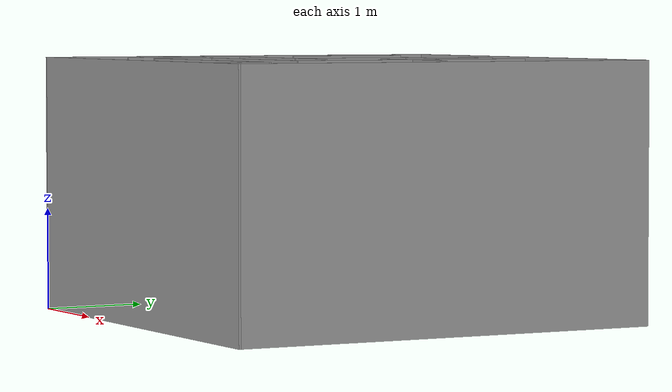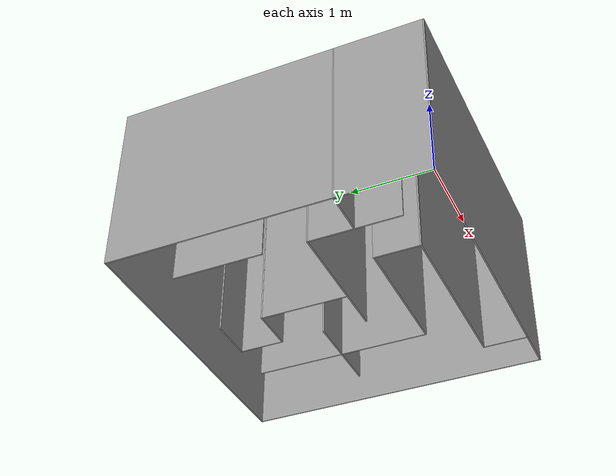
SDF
<?xml version='1.0'?>
<sdf version='1.6'>
  <model name='eced3901_final'>
    <pose frame=''>2.133 2.1335 0 0 -0 0</pose>
    <link name='Wall_10'>
      <collision name='Wall_10_Collision'>
        <geometry>
          <box>
            <size>0.629 0.02 2.5</size>
          </box>
        </geometry>
        <pose frame=''>0 0 1.25 0 -0 0</pose>
      </collision>
      <visual name='Wall_10_Visual'>
        <pose frame=''>0 0 1.25 0 -0 0</pose>
        <geometry>
          <box>
            <size>0.629 0.02 2.5</size>
          </box>
        </geometry>
        <material>
          <script>
            <uri>file://media/materials/scripts/gazebo.material</uri>
            <name>Gazebo/Grey</name>
          </script>
          <ambient>1 1 1 1</ambient>
        </material>
        <meta>
          <layer>0</layer>
        </meta>
      </visual>
      <pose frame=''>1.523 -1.829 0 0 -0 1.5708</pose>
    </link>
    <link name='Wall_12'>
      <collision name='Wall_12_Collision'>
        <geometry>
          <box>
            <size>2.457 0.02 2.5</size>
          </box>
        </geometry>
        <pose frame=''>0 0 1.25 0 -0 0</pose>
      </collision>
      <visual name='Wall_12_Visual'>
        <pose frame=''>0 0 1.25 0 -0 0</pose>
        <geometry>
          <box>
            <size>2.457 0.02 2.5</size>
          </box>
        </geometry>
        <material>
          <script>
            <uri>file://media/materials/scripts/gazebo.material</uri>
            <name>Gazebo/Grey</name>
          </script>
          <ambient>1 1 1 1</ambient>
        </material>
        <meta>
          <layer>0</layer>
        </meta>
      </visual>
      <pose frame=''>0.3045 -1.5245 0 0 -0 3.14159</pose>
    </link>
    <link name='Wall_14'>
      <collision name='Wall_14_Collision'>
        <geometry>
          <box>
            <size>0.63 0.02 2.5</size>
          </box>
        </geometry>
        <pose frame=''>0 0 1.25 0 -0 0</pose>
      </collision>
      <visual name='Wall_14_Visual'>
        <pose frame=''>0 0 1.25 0 -0 0</pose>
        <geometry>
          <box>
            <size>0.63 0.02 2.5</size>
          </box>
        </geometry>
        <material>
          <script>
            <uri>file://media/materials/scripts/gazebo.material</uri>
            <name>Gazebo/Grey</name>
          </script>
          <ambient>1 1 1 1</ambient>
        </material>
        <meta>
          <layer>0</layer>
        </meta>
      </visual>
      <pose frame=''>-0.914 -1.2195 0 0 -0 1.5708</pose>
    </link>
    <link name='Wall_16'>
      <collision name='Wall_16_Collision'>
        <geometry>
          <box>
            <size>1.847 0.02 2.5</size>
          </box>
        </geometry>
        <pose frame=''>0 0 1.25 0 -0 0</pose>
      </collision>
      <visual name='Wall_16_Visual'>
        <pose frame=''>0 0 1.25 0 -0 0</pose>
        <geometry>
          <box>
            <size>1.847 0.02 2.5</size>
          </box>
        </geometry>
        <material>
          <script>
            <uri>file://media/materials/scripts/gazebo.material</uri>
            <name>Gazebo/Grey</name>
          </script>
          <ambient>1 1 1 1</ambient>
        </material>
        <meta>
          <layer>0</layer>
        </meta>
      </visual>
      <pose frame=''>-0.0005 -0.9145 0 0 -0 0</pose>
    </link>
    <link name='Wall_18'>
      <collision name='Wall_18_Collision'>
        <geometry>
          <box>
            <size>1.239 0.02 2.5</size>
          </box>
        </geometry>
        <pose frame=''>0 0 1.25 0 -0 0</pose>
      </collision>
      <visual name='Wall_18_Visual'>
        <pose frame=''>0 0 1.25 0 -0 0</pose>
        <geometry>
          <box>
            <size>1.239 0.02 2.5</size>
          </box>
        </geometry>
        <material>
          <script>
            <uri>file://media/materials/scripts/gazebo.material</uri>
            <name>Gazebo/Grey</name>
          </script>
          <ambient>1 1 1 1</ambient>
        </material>
        <meta>
          <layer>0</layer>
        </meta>
      </visual>
      <pose frame=''>0.913 -0.305 0 0 -0 1.5708</pose>
    </link>
    <link name='Wall_2'>
      <collision name='Wall_2_Collision'>
        <geometry>
          <box>
            <size>4.287 0.02 2.5</size>
          </box>
        </geometry>
        <pose frame=''>0 0 1.25 0 -0 0</pose>
      </collision>
      <visual name='Wall_2_Visual'>
        <pose frame=''>0 0 1.25 0 -0 0</pose>
        <geometry>
          <box>
            <size>4.287 0.02 2.5</size>
          </box>
        </geometry>
        <material>
          <script>
            <uri>file://media/materials/scripts/gazebo.material</uri>
            <name>Gazebo/Grey</name>
          </script>
          <ambient>1 1 1 1</ambient>
        </material>
        <meta>
          <layer>0</layer>
        </meta>
      </visual>
      <pose frame=''>-2.133 0 0 0 -0 1.5708</pose>
    </link>
    <link name='Wall_20'>
      <collision name='Wall_20_Collision'>
        <geometry>
          <box>
            <size>1.239 0.02 2.5</size>
          </box>
        </geometry>
        <pose frame=''>0 0 1.25 0 -0 0</pose>
      </collision>
      <visual name='Wall_20_Visual'>
        <pose frame=''>0 0 1.25 0 -0 0</pose>
        <geometry>
          <box>
            <size>1.239 0.02 2.5</size>
          </box>
        </geometry>
        <material>
          <script>
            <uri>file://media/materials/scripts/gazebo.material</uri>
            <name>Gazebo/Grey</name>
          </script>
          <ambient>1 1 1 1</ambient>
        </material>
        <meta>
          <layer>0</layer>
        </meta>
      </visual>
      <pose frame=''>0.9135 0.3035 0 0 -0 3.14159</pose>
    </link>
    <link name='Wall_23'>
      <collision name='Wall_23_Collision'>
        <geometry>
          <box>
            <size>1.239 0.02 2.5</size>
          </box>
        </geometry>
        <pose frame=''>0 0 1.25 0 -0 0</pose>
      </collision>
      <visual name='Wall_23_Visual'>
        <pose frame=''>0 0 1.25 0 -0 0</pose>
        <geometry>
          <box>
            <size>1.239 0.02 2.5</size>
          </box>
        </geometry>
        <material>
          <script>
            <uri>file://media/materials/scripts/gazebo.material</uri>
            <name>Gazebo/Grey</name>
          </script>
          <ambient>1 1 1 1</ambient>
        </material>
        <meta>
          <layer>0</layer>
        </meta>
      </visual>
      <pose frame=''>0.913 0.914 0 0 -0 1.5708</pose>
    </link>
    <link name='Wall_25'>
      <collision name='Wall_25_Collision'>
        <geometry>
          <box>
            <size>0.63 0.02 2.5</size>
          </box>
        </geometry>
        <pose frame=''>0 0 1.25 0 -0 0</pose>
      </collision>
      <visual name='Wall_25_Visual'>
        <pose frame=''>0 0 1.25 0 -0 0</pose>
        <geometry>
          <box>
            <size>0.63 0.02 2.5</size>
          </box>
        </geometry>
        <material>
          <script>
            <uri>file://media/materials/scripts/gazebo.material</uri>
            <name>Gazebo/Grey</name>
          </script>
          <ambient>1 1 1 1</ambient>
        </material>
        <meta>
          <layer>0</layer>
        </meta>
      </visual>
      <pose frame=''>-0.001 1.5235 0 0 -0 3.14159</pose>
    </link>
    <link name='Wall_27'>
      <collision name='Wall_27_Collision'>
        <geometry>
          <box>
            <size>0.63 0.02 2.5</size>
          </box>
        </geometry>
        <pose frame=''>0 0 1.25 0 -0 0</pose>
      </collision>
      <visual name='Wall_27_Visual'>
        <pose frame=''>0 0 1.25 0 -0 0</pose>
        <geometry>
          <box>
            <size>0.63 0.02 2.5</size>
          </box>
        </geometry>
        <material>
          <script>
            <uri>file://media/materials/scripts/gazebo.material</uri>
            <name>Gazebo/Grey</name>
          </script>
          <ambient>1 1 1 1</ambient>
        </material>
        <meta>
          <layer>0</layer>
        </meta>
      </visual>
      <pose frame=''>0.304 1.2185 0 0 -0 -1.5708</pose>
    </link>
    <link name='Wall_29'>
      <collision name='Wall_29_Collision'>
        <geometry>
          <box>
            <size>0.63 0.02 2.5</size>
          </box>
        </geometry>
        <pose frame=''>0 0 1.25 0 -0 0</pose>
      </collision>
      <visual name='Wall_29_Visual'>
        <pose frame=''>0 0 1.25 0 -0 0</pose>
        <geometry>
          <box>
            <size>0.63 0.02 2.5</size>
          </box>
        </geometry>
        <material>
          <script>
            <uri>file://media/materials/scripts/gazebo.material</uri>
            <name>Gazebo/Grey</name>
          </script>
          <ambient>1 1 1 1</ambient>
        </material>
        <meta>
          <layer>0</layer>
        </meta>
      </visual>
      <pose frame=''>-0.001 0.9135 0 0 -0 3.14159</pose>
    </link>
    <link name='Wall_31'>
      <collision name='Wall_31_Collision'>
        <geometry>
          <box>
            <size>1.239 0.02 2.5</size>
          </box>
        </geometry>
        <pose frame=''>0 0 1.25 0 -0 0</pose>
      </collision>
      <visual name='Wall_31_Visual'>
        <pose frame=''>0 0 1.25 0 -0 0</pose>
        <geometry>
          <box>
            <size>1.239 0.02 2.5</size>
          </box>
        </geometry>
        <material>
          <script>
            <uri>file://media/materials/scripts/gazebo.material</uri>
            <name>Gazebo/Grey</name>
          </script>
          <ambient>1 1 1 1</ambient>
        </material>
        <meta>
          <layer>0</layer>
        </meta>
      </visual>
      <pose frame=''>-0.305 0.304 0 0 -0 -1.5708</pose>
    </link>
    <link name='Wall_33'>
      <collision name='Wall_33_Collision'>
        <geometry>
          <box>
            <size>1.848 0.02 2.5</size>
          </box>
        </geometry>
        <pose frame=''>0 0 1.25 0 -0 0</pose>
      </collision>
      <visual name='Wall_33_Visual'>
        <pose frame=''>0 0 1.25 0 -0 0</pose>
        <geometry>
          <box>
            <size>1.848 0.02 2.5</size>
          </box>
        </geometry>
        <material>
          <script>
            <uri>file://media/materials/scripts/gazebo.material</uri>
            <name>Gazebo/Grey</name>
          </script>
          <ambient>1 1 1 1</ambient>
        </material>
        <meta>
          <layer>0</layer>
        </meta>
      </visual>
      <pose frame=''>-0.61 -0.3055 0 0 -0 3.14159</pose>
    </link>
    <link name='Wall_35'>
      <collision name='Wall_35_Collision'>
        <geometry>
          <box>
            <size>1.239 0.02 2.5</size>
          </box>
        </geometry>
        <pose frame=''>0 0 1.25 0 -0 0</pose>
      </collision>
      <visual name='Wall_35_Visual'>
        <pose frame=''>0 0 1.25 0 -0 0</pose>
        <geometry>
          <box>
            <size>1.239 0.02 2.5</size>
          </box>
        </geometry>
        <material>
          <script>
            <uri>file://media/materials/scripts/gazebo.material</uri>
            <name>Gazebo/Grey</name>
          </script>
          <ambient>1 1 1 1</ambient>
        </material>
        <meta>
          <layer>0</layer>
        </meta>
      </visual>
      <pose frame=''>-1.524 -0.915 0 0 -0 -1.5708</pose>
    </link>
    <link name='Wall_37'>
      <collision name='Wall_37_Collision'>
        <geometry>
          <box>
            <size>0.629 0.02 2.5</size>
          </box>
        </geometry>
        <pose frame=''>0 0 1.25 0 -0 0</pose>
      </collision>
      <visual name='Wall_37_Visual'>
        <pose frame=''>0 0 1.25 0 -0 0</pose>
        <geometry>
          <box>
            <size>0.629 0.02 2.5</size>
          </box>
        </geometry>
        <material>
          <script>
            <uri>file://media/materials/scripts/gazebo.material</uri>
            <name>Gazebo/Grey</name>
          </script>
          <ambient>1 1 1 1</ambient>
        </material>
        <meta>
          <layer>0</layer>
        </meta>
      </visual>
      <pose frame=''>-1.8285 -0.9155 0 0 -0 3.14159</pose>
    </link>
    <link name='Wall_4'>
      <collision name='Wall_4_Collision'>
        <geometry>
          <box>
            <size>4.286 0.02 2.5</size>
          </box>
        </geometry>
        <pose frame=''>0 0 1.25 0 -0 0</pose>
      </collision>
      <visual name='Wall_4_Visual'>
        <pose frame=''>0 0 1.25 0 -0 0</pose>
        <geometry>
          <box>
            <size>4.286 0.02 2.5</size>
          </box>
        </geometry>
        <material>
          <script>
            <uri>file://media/materials/scripts/gazebo.material</uri>
            <name>Gazebo/Grey</name>
          </script>
          <ambient>1 1 1 1</ambient>
        </material>
        <meta>
          <layer>0</layer>
        </meta>
      </visual>
      <pose frame=''>0 2.1325 0 0 -0 0</pose>
    </link>
    <link name='Wall_40'>
      <collision name='Wall_40_Collision'>
        <geometry>
          <box>
            <size>1.239 0.02 2.5</size>
          </box>
        </geometry>
        <pose frame=''>0 0 1.25 0 -0 0</pose>
      </collision>
      <visual name='Wall_40_Visual'>
        <pose frame=''>0 0 1.25 0 -0 0</pose>
        <geometry>
          <box>
            <size>1.239 0.02 2.5</size>
          </box>
        </geometry>
        <material>
          <script>
            <uri>file://media/materials/scripts/gazebo.material</uri>
            <name>Gazebo/Grey</name>
          </script>
          <ambient>1 1 1 1</ambient>
        </material>
        <meta>
          <layer>0</layer>
        </meta>
      </visual>
      <pose frame=''>-1.524 0.913 0 0 -0 -1.5708</pose>
    </link>
    <link name='Wall_6'>
      <collision name='Wall_6_Collision'>
        <geometry>
          <box>
            <size>4.286 0.02 2.5</size>
          </box>
        </geometry>
        <pose frame=''>0 0 1.25 0 -0 0</pose>
      </collision>
      <visual name='Wall_6_Visual'>
        <pose frame=''>0 0 1.25 0 -0 0</pose>
        <geometry>
          <box>
            <size>4.286 0.02 2.5</size>
          </box>
        </geometry>
        <material>
          <script>
            <uri>file://media/materials/scripts/gazebo.material</uri>
            <name>Gazebo/Grey</name>
          </script>
          <ambient>1 1 1 1</ambient>
        </material>
        <meta>
          <layer>0</layer>
        </meta>
      </visual>
      <pose frame=''>2.133 -0.0005 0 0 -0 -1.5708</pose>
    </link>
    <link name='Wall_8'>
      <collision name='Wall_8_Collision'>
        <geometry>
          <box>
            <size>4.286 0.02 2.5</size>
          </box>
        </geometry>
        <pose frame=''>0 0 1.25 0 -0 0</pose>
      </collision>
      <visual name='Wall_8_Visual'>
        <pose frame=''>0 0 1.25 0 -0 0</pose>
        <geometry>
          <box>
            <size>4.286 0.02 2.5</size>
          </box>
        </geometry>
        <material>
          <script>
            <uri>file://media/materials/scripts/gazebo.material</uri>
            <name>Gazebo/Grey</name>
          </script>
          <ambient>1 1 1 1</ambient>
        </material>
        <meta>
          <layer>0</layer>
        </meta>
      </visual>
      <pose frame=''>0 -2.1335 0 0 -0 3.14159</pose>
    </link>
    <static>1</static>
  </model>
</sdf>
